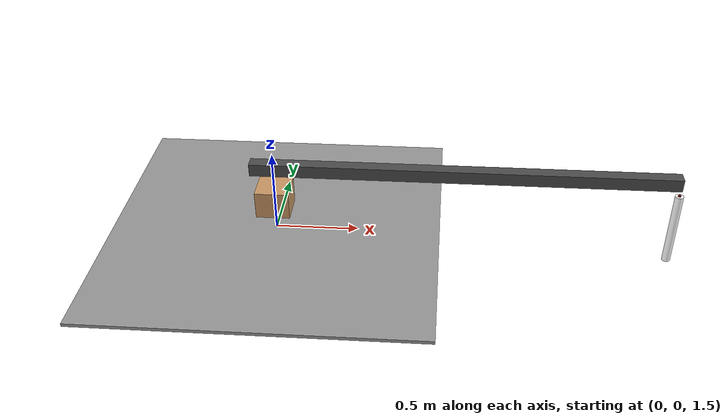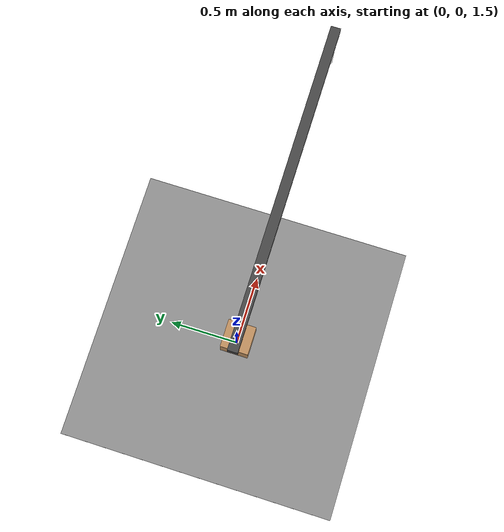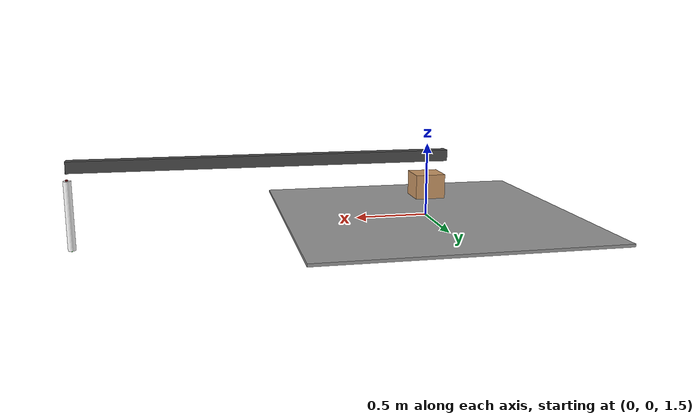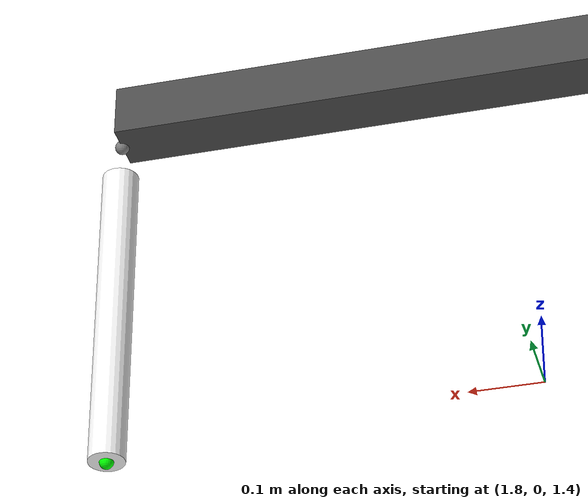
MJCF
<mujoco>
  <option integrator="implicitfast" timestep="0.01">
    <flag energy="enable" warmstart="enable" contact="disable"/>
  </option>

  <compiler autolimits="true" angle="radian"/>

  <worldbody>
    <light diffuse=".75 .75 .75" pos="0 0 10" dir="0 0 -1" castshadow="false"/>

    <body name="base" pos="0 0 1.5" euler="0 0 0" gravcomp="1" mocap="false">
      <geom name="base_geom" type="box" size="1 1 .01" rgba=".6 .6 .6 1" contype="0" conaffinity="0"/>

      <body name="cab" pos="0.0 -0.01 0.216" gravcomp="1">
        <!-- joint name="slew-joint" type="hinge" axis="0 0 1" range="-1.3 1.3" pos="0 0 -.5" stiffness="0" damping="2.97258206" frictionloss="0" armature="129.825003"/ -->
        <joint name="slew-joint" type="hinge" axis="0 0 1" pos="0 0 -.092" range="-1.3 1.3" armature="0.0" damping="0.0"/>
        <geom name="cab_geom" type="box" size=".1015 .1015 .0825" rgba=".8 .6 .4 1" mass="7.935"/>

        <site name="cab_imu" pos="0 0 0" size="0.01"/>

        <body name="boom" pos="1.125 0 0.205" gravcomp="1">
          <!-- joint name="luff-joint" type="hinge" pos="-1.125 0 -0.205" axis="0 -1 0" range="0.001 1.2"  stiffness="0" damping="0.0241868441" frictionloss="0" armature="22553.9006"/ -->
          <joint name="luff-joint" type="hinge" pos="-1.0392 0 -.179" axis="0 -1 0" range="0.001 1.2" armature="7110.0" damping="0.4454"/>
          <geom name="boom_geom" type="box" size="1.259 0.038 0.038" rgba=".3 .3 .3 1" mass="5.777"/>

          <site name="boom_imu" pos="0 0 0" size="0.01"/>

          <site name="boom_tip_site" pos="1.259 0 -0.038" size="0.01"/>
          <body name="boom_tip" pos="1.259 0 -0.038" gravcomp="1">
            <joint name="boom-tip-x-rot-hinge" type="hinge" axis="1 0 0" range="-1.5 1.5" stiffness="0.01" damping="0.1" frictionloss="0" armature="0.0"/>
            <joint name="boom-tip-y-rot-hinge" type="hinge" axis="0 1 0" range="-1.5 1.5" stiffness="0.01" damping="0.1" frictionloss="0" armature="0.0"/>
            <joint name="hoist-slider" type="slide" axis="0 0 -1" limited="true" range="0.07 2" stiffness="0" damping="0.0" frictionloss="0" armature="46.9666336"/>

            <body name="payload_connector" pos="0 0 -.0535">
              <geom name="payload_connector_geom" type="sphere" size="0.01" rgba=".3 0 0 1" mass="0.0000000001" contype="0" conaffinity="0"/>

              <body name="payload">
                <geom name="payload_geom" pos="0 0 -0.2286" type="cylinder" size="0.0254 0.2286" rgba="1 1 1 1" mass=".318"/>

                <site name="payload_top" pos="0 0 0" size="0.01" rgba="1 0 0 1"/>
                <site name="payload_center" pos="0 0 -0.2286" size="0.01" rgba="0 0 1 1"/>
                <site name="payload_bottom" pos="0 0 -0.4572" size="0.01" rgba="0 1 0 1"/>
              </body>
            </body>
          </body>
        </body>
      </body>

      <site name="cab_bottom" pos="0.0 -0.01 0" size="0.01" rgba="1 0 0 1"/>
    </body>

  </worldbody>

  <actuator>
      <velocity name="slew-velocity" joint="slew-joint" ctrlrange="-.7854 .7854" kv="2999.75774"/>
      <velocity name="luff-velocity" joint="luff-joint" ctrlrange="-.2618 .2618" kv="136228.878"/>
      <velocity name="hoist-velocity" joint="hoist-slider" ctrlrange="-.8 .8" kv="962.107008"/>

  </actuator>

</mujoco>
